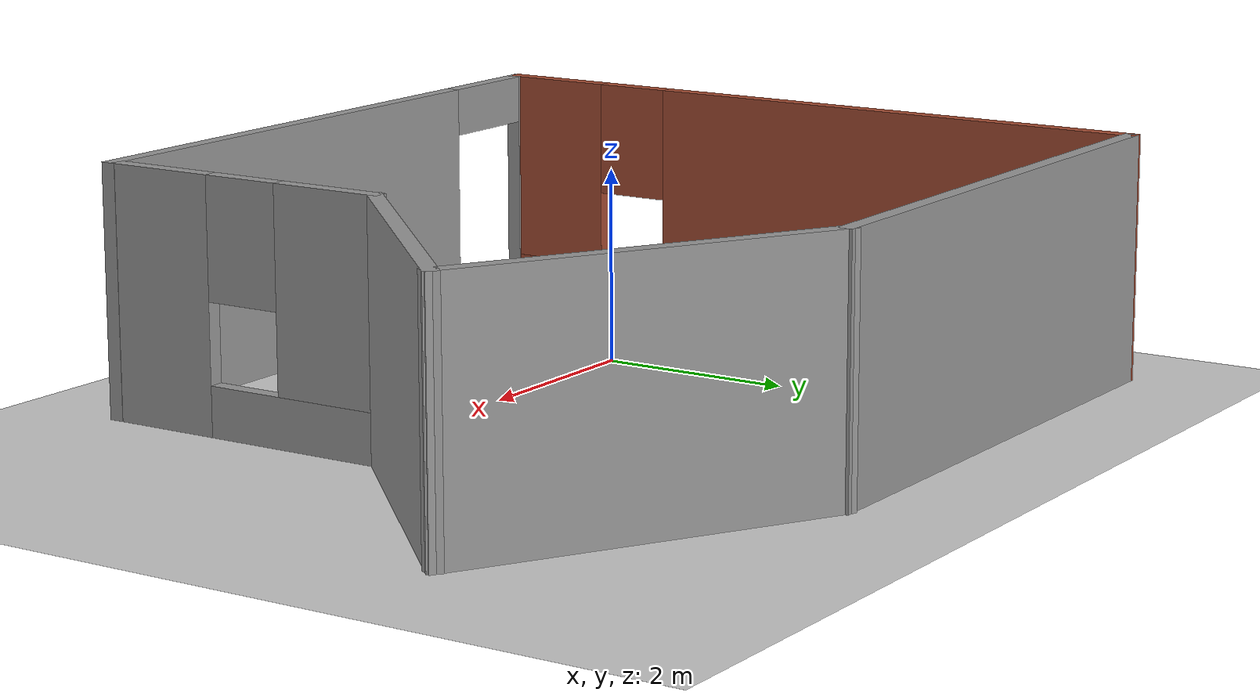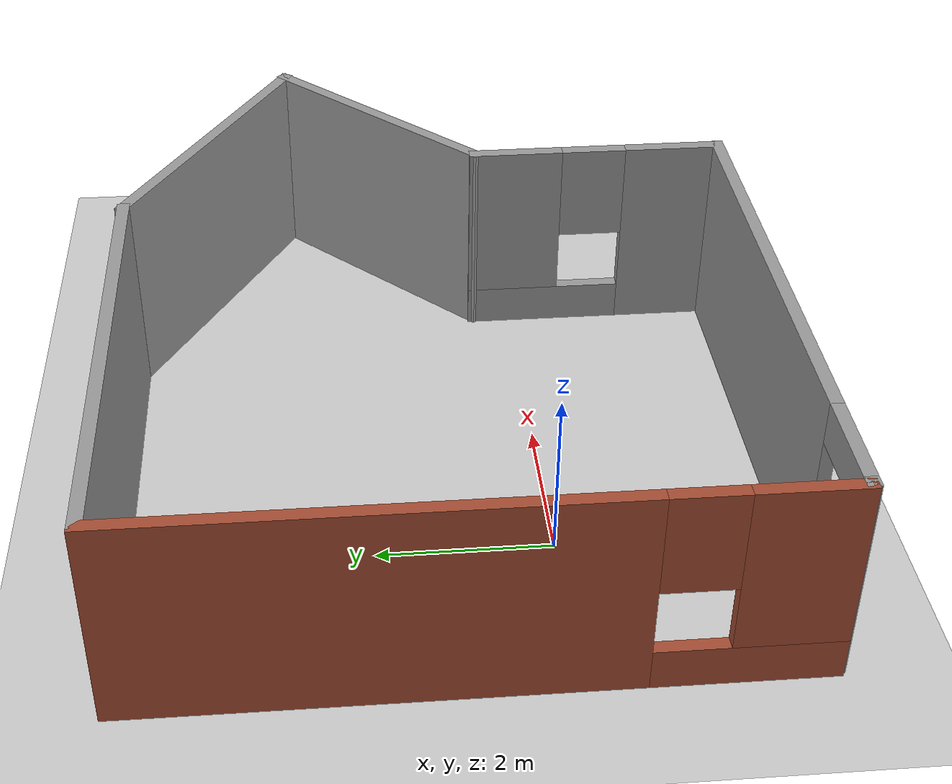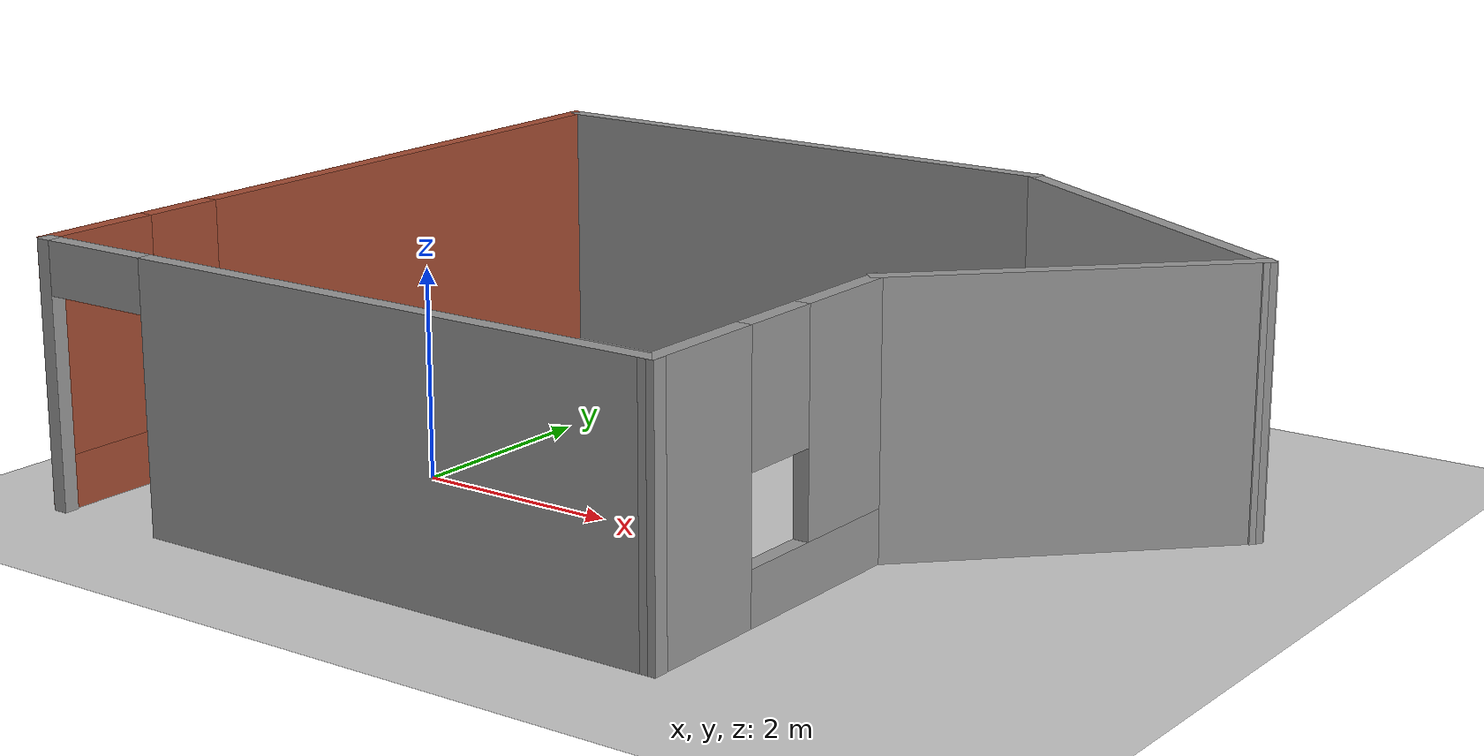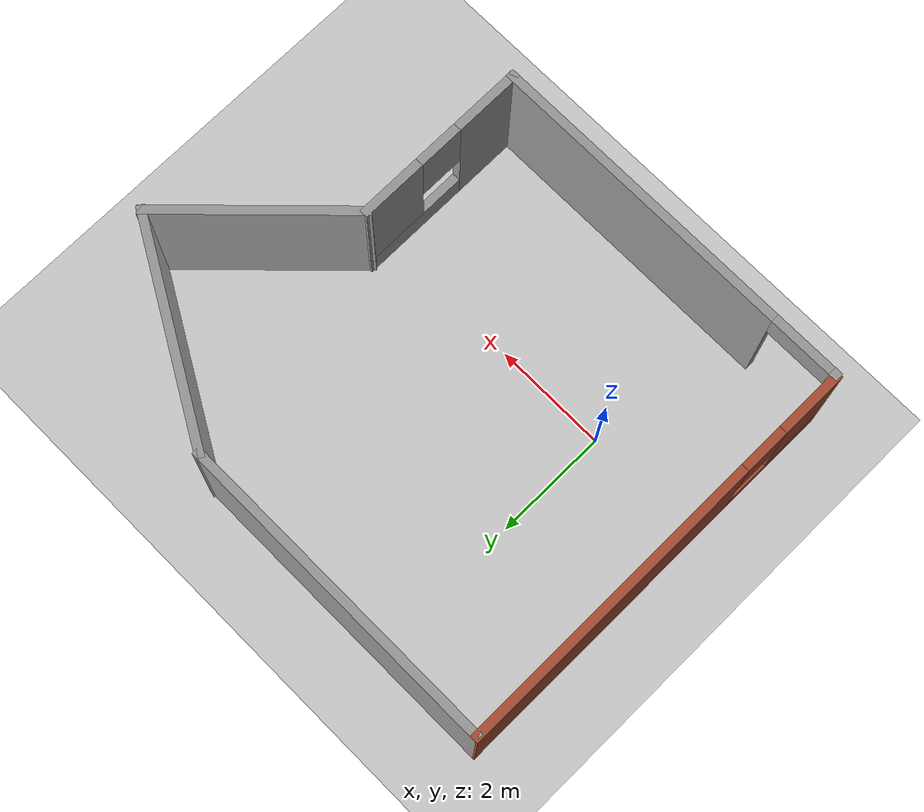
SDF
<sdf version="1.7">
 <world name="default">
  <light name="sun" type="directional">
   <pose>0 0 10 0 -0 0</pose>
   <diffuse>0.8 0.8 0.8 1</diffuse>
   <specular>0.2 0.2 0.2 1</specular>
   <attenuation>
    <range>1000</range>
    <constant>0.9</constant>
    <linear>0.01</linear>
    <quadratic>0.001</quadratic>
   </attenuation>
   <direction>-0.5 0.1 -0.9</direction>
   <spot><inner_angle>0</inner_angle><outer_angle>0</outer_angle><falloff>0</falloff></spot>
  </light>
  <model name="ground_plane">
   <static>1</static>
   <link name="link">
    <collision name="collision">
     <geometry><plane><normal>0 0 1</normal><size>100 100</size></plane></geometry>
     <surface>
      <contact><collide_bitmask>65535</collide_bitmask></contact>
      <friction><ode><mu>100</mu><mu2>50</mu2></ode></friction>
     </surface>
    </collision>
    <visual name="visual">
     <cast_shadows>0</cast_shadows>
     <geometry><plane><normal>0 0 1</normal><size>100 100</size></plane></geometry>
     <material>
      <script><uri>file://media/materials/scripts/gazebo.material</uri><name>Gazebo/Grey</name></script>
     </material>
    </visual>
   </link>
  </model>
  <gravity>0 0 -9.8</gravity>
  <magnetic_field>6e-06 2.3e-05 -4.2e-05</magnetic_field>
  <atmosphere type="adiabatic"/>
  <physics type="ode">
   <max_step_size>0.001</max_step_size>
   <real_time_factor>1</real_time_factor>
   <real_time_update_rate>1000</real_time_update_rate>
  </physics>
  <scene><ambient>0.4 0.4 0.4 1</ambient><background>0.7 0.7 0.7 1</background><shadows>1</shadows></scene>
  <spherical_coordinates>
   <surface_model>EARTH_WGS84</surface_model>
   <latitude_deg>0</latitude_deg>
   <longitude_deg>0</longitude_deg>
   <elevation>0</elevation>
   <heading_deg>0</heading_deg>
  </spherical_coordinates>
  <model name="my_building">
   <pose>2.43259 1.09028 0 0 -0 0</pose>
   <link name="Wall_0">
    <pose>-1.17971 -3.70188 0 0 -0 0</pose>
    <visual name="Wall_0_Visual_0">
     <pose>-3.30289 0 1.25 0 -0 0</pose>
     <geometry><box><size>0.144212 0.15 2.5</size></box></geometry>
     <material>
      <script><uri>file://media/materials/scripts/gazebo.material</uri><name>Gazebo/Grey</name></script>
      <ambient>1 1 1 1</ambient>
     </material>
     <meta><layer>0</layer></meta>
    </visual>
    <collision name="Wall_0_Collision_0">
     <geometry><box><size>0.144212 0.15 2.5</size></box></geometry>
     <pose>-3.30289 0 1.25 0 -0 0</pose>
    </collision>
    <visual name="Wall_0_Visual_1">
     <pose>0.635106 0 1.25 0 -0 0</pose>
     <geometry><box><size>5.47979 0.15 2.5</size></box></geometry>
     <material>
      <script><uri>file://media/materials/scripts/gazebo.material</uri><name>Gazebo/Grey</name></script>
      <ambient>1 1 1 1</ambient>
     </material>
     <meta><layer>0</layer></meta>
    </visual>
    <collision name="Wall_0_Collision_1">
     <geometry><box><size>5.47979 0.15 2.5</size></box></geometry>
     <pose>0.635106 0 1.25 0 -0 0</pose>
    </collision>
    <visual name="Wall_0_Visual_2">
     <pose>-2.66779 0 2.25 0 -0 0</pose>
     <geometry><box><size>1.126 0.15 0.5</size></box></geometry>
     <material>
      <script><uri>file://media/materials/scripts/gazebo.material</uri><name>Gazebo/Grey</name></script>
      <ambient>1 1 1 1</ambient>
     </material>
     <meta><layer>0</layer></meta>
    </visual>
    <collision name="Wall_0_Collision_2">
     <geometry><box><size>1.126 0.15 0.5</size></box></geometry>
     <pose>-2.66779 0 2.25 0 -0 0</pose>
    </collision>
   </link>
   <link name="Wall_1">
    <pose>2.11377 -2.16058 0 0 -0 1.57221</pose>
    <visual name="Wall_1_Visual_0">
     <pose>-0.98626 0 1.25 0 -0 0</pose>
     <geometry><box><size>1.26009 0.15 2.5</size></box></geometry>
     <material>
      <script><uri>file://media/materials/scripts/gazebo.material</uri><name>Gazebo/Grey</name></script>
      <ambient>1 1 1 1</ambient>
     </material>
     <meta><layer>0</layer></meta>
    </visual>
    <collision name="Wall_1_Collision_0">
     <geometry><box><size>1.26009 0.15 2.5</size></box></geometry>
     <pose>-0.98626 0 1.25 0 -0 0</pose>
    </collision>
    <visual name="Wall_1_Visual_1">
     <pose>0.630046 0 0.25 0 -0 0</pose>
     <geometry><box><size>1.97252 0.15 0.5</size></box></geometry>
     <material>
      <script><uri>file://media/materials/scripts/gazebo.material</uri><name>Gazebo/Grey</name></script>
      <ambient>1 1 1 1</ambient>
     </material>
     <meta><layer>0</layer></meta>
    </visual>
    <collision name="Wall_1_Collision_1">
     <geometry><box><size>1.97252 0.15 0.5</size></box></geometry>
     <pose>0.630046 0 0.25 0 -0 0</pose>
    </collision>
    <visual name="Wall_1_Visual_2">
     <pose>1.03005 0 1.5 0 -0 0</pose>
     <geometry><box><size>1.17252 0.15 2</size></box></geometry>
     <material>
      <script><uri>file://media/materials/scripts/gazebo.material</uri><name>Gazebo/Grey</name></script>
      <ambient>1 1 1 1</ambient>
     </material>
     <meta><layer>0</layer></meta>
    </visual>
    <collision name="Wall_1_Collision_2">
     <geometry><box><size>1.17252 0.15 2</size></box></geometry>
     <pose>1.03005 0 1.5 0 -0 0</pose>
    </collision>
    <visual name="Wall_1_Visual_3">
     <pose>0.043786 0 1.9 0 -0 0</pose>
     <geometry><box><size>0.8 0.15 1.2</size></box></geometry>
     <material>
      <script><uri>file://media/materials/scripts/gazebo.material</uri><name>Gazebo/Grey</name></script>
      <ambient>1 1 1 1</ambient>
     </material>
     <meta><layer>0</layer></meta>
    </visual>
    <collision name="Wall_1_Collision_3">
     <geometry><box><size>0.8 0.15 1.2</size></box></geometry>
     <pose>0.043786 0 1.9 0 -0 0</pose>
    </collision>
   </link>
   <link name="Wall_2">
    <collision name="Wall_2_Collision">
     <geometry><box><size>3.5 0.15 2.5</size></box></geometry>
     <pose>0 0 1.25 0 -0 0</pose>
    </collision>
    <visual name="Wall_2_Visual">
     <pose>0 0 1.25 0 -0 0</pose>
     <geometry><box><size>3.5 0.15 2.5</size></box></geometry>
     <material>
      <script><uri>file://media/materials/scripts/gazebo.material</uri><name>Gazebo/Grey</name></script>
      <ambient>1 1 1 1</ambient>
     </material>
     <meta><layer>0</layer></meta>
    </visual>
    <pose>3.296 0.565131 0 0 -0 0.785398</pose>
   </link>
   <link name="Wall_3">
    <collision name="Wall_3_Collision">
     <geometry><box><size>4 0.15 2.5</size></box></geometry>
     <pose>0 0 1.25 0 -0 0</pose>
    </collision>
    <visual name="Wall_3_Visual">
     <pose>0 0 1.25 0 -0 0</pose>
     <geometry><box><size>4 0.15 2.5</size></box></geometry>
     <material>
      <script><uri>file://media/materials/scripts/gazebo.material</uri><name>Gazebo/Grey</name></script>
      <ambient>1 1 1 1</ambient>
     </material>
     <meta><layer>0</layer></meta>
    </visual>
    <pose>2.8133 2.71204 0 0 -0 2.61799</pose>
   </link>
   <link name="Wall_4">
    <collision name="Wall_4_Collision">
     <geometry><box><size>5.77249 0.15 2.5</size></box></geometry>
     <pose>0 0 1.25 0 -0 0</pose>
    </collision>
    <visual name="Wall_4_Visual">
     <pose>0 0 1.25 0 -0 0</pose>
     <geometry><box><size>5.77249 0.15 2.5</size></box></geometry>
     <material>
      <script><uri>file://media/materials/scripts/gazebo.material</uri><name>Gazebo/Grey</name></script>
      <ambient>1 1 1 1</ambient>
     </material>
     <meta><layer>0</layer></meta>
    </visual>
    <pose>-1.66504 3.67454 0 0 -0 3.14159</pose>
   </link>
   <link name="Wall_5">
    <pose>-4.51147 -0.000465 0 0 -0 -1.5708</pose>
    <visual name="Wall_5_Visual_0">
     <pose>-0.999367 0 1.25 0 -0 0</pose>
     <geometry><box><size>5.50127 0.15 2.5</size></box></geometry>
     <material>
      <script><uri>file://media/materials/scripts/gazebo.material</uri><name>Gazebo/Bricks</name></script>
      <ambient>1 1 1 1</ambient>
     </material>
     <meta><layer>0</layer></meta>
    </visual>
    <collision name="Wall_5_Collision_0">
     <geometry><box><size>5.50127 0.15 2.5</size></box></geometry>
     <pose>-0.999367 0 1.25 0 -0 0</pose>
    </collision>
    <visual name="Wall_5_Visual_1">
     <pose>2.75063 0 0.25 0 -0 0</pose>
     <geometry><box><size>1.99873 0.15 0.5</size></box></geometry>
     <material>
      <script><uri>file://media/materials/scripts/gazebo.material</uri><name>Gazebo/Bricks</name></script>
      <ambient>1 1 1 1</ambient>
     </material>
     <meta><layer>0</layer></meta>
    </visual>
    <collision name="Wall_5_Collision_1">
     <geometry><box><size>1.99873 0.15 0.5</size></box></geometry>
     <pose>2.75063 0 0.25 0 -0 0</pose>
    </collision>
    <visual name="Wall_5_Visual_2">
     <pose>3.15063 0 1.5 0 -0 0</pose>
     <geometry><box><size>1.19874 0.15 2</size></box></geometry>
     <material>
      <script><uri>file://media/materials/scripts/gazebo.material</uri><name>Gazebo/Bricks</name></script>
      <ambient>1 1 1 1</ambient>
     </material>
     <meta><layer>0</layer></meta>
    </visual>
    <collision name="Wall_5_Collision_2">
     <geometry><box><size>1.19874 0.15 2</size></box></geometry>
     <pose>3.15063 0 1.5 0 -0 0</pose>
    </collision>
    <visual name="Wall_5_Visual_3">
     <pose>2.15126 0 1.9 0 -0 0</pose>
     <geometry><box><size>0.8 0.15 1.2</size></box></geometry>
     <material>
      <script><uri>file://media/materials/scripts/gazebo.material</uri><name>Gazebo/Bricks</name></script>
      <ambient>1 1 1 1</ambient>
     </material>
     <meta><layer>0</layer></meta>
    </visual>
    <collision name="Wall_5_Collision_3">
     <geometry><box><size>0.8 0.15 1.2</size></box></geometry>
     <pose>2.15126 0 1.9 0 -0 0</pose>
    </collision>
   </link>
   <static>1</static>
  </model>
 </world>
</sdf>
